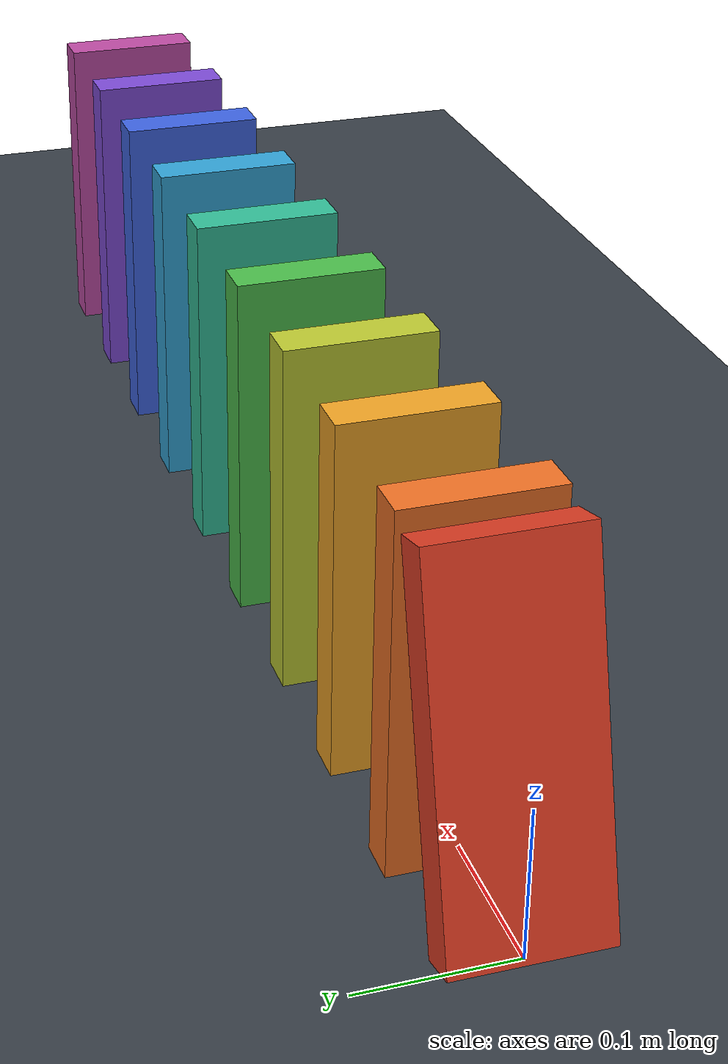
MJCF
<mujoco model="ten_domino_cascade">
  <compiler angle="degree"/>
  <option timestep="0.002" gravity="0 0 -9.81" integrator="implicitfast" iterations="100" tolerance="1e-10"/>
  <size nconmax="200" njmax="1000"/>

  <visual>
    <headlight ambient="0.4 0.4 0.4" diffuse="0.7 0.7 0.7" specular="0.2 0.2 0.2"/>
  </visual>

  <worldbody>
    <light name="overhead" pos="0.45 -0.5 2" dir="0 0 -1"/>
    <camera name="overview" pos="1.35 -1.7 1.15" xyaxes="0.884 0.468 0 -0.231 0.437 0.869"/>

    <geom name="floor" type="plane" pos="0 0 0" size="2 1 0.1" friction="0.8 0.005 0.0001" solref="0.01 1" solimp="0.95 0.99 0.001" rgba="0.22 0.25 0.28 1"/>

    <!-- Each domino is 0.028 m thick, 0.10 m wide, and 0.24 m tall. -->
    <!-- Domino 1 leans 15 degrees toward +x, resting on its lower leading edge. -->
    <body name="domino1" pos="0.031535323 0 0.119535" quat="0.991444861 0 0.130526192 0">
      <freejoint/>
      <geom name="domino1_geom" type="box" size="0.014 0.05 0.12" mass="0.15" friction="0.8 0.005 0.0001" solref="0.01 1" solimp="0.95 0.99 0.001" rgba="0.9 0.25 0.15 1"/>
    </body>

    <body name="domino2" pos="0.10 0 0.12">
      <freejoint/>
      <geom name="domino2_geom" type="box" size="0.014 0.05 0.12" mass="0.15" friction="0.8 0.005 0.0001" solref="0.01 1" solimp="0.95 0.99 0.001" rgba="0.95 0.45 0.15 1"/>
    </body>

    <body name="domino3" pos="0.20 0 0.12">
      <freejoint/>
      <geom name="domino3_geom" type="box" size="0.014 0.05 0.12" mass="0.15" friction="0.8 0.005 0.0001" solref="0.01 1" solimp="0.95 0.99 0.001" rgba="0.95 0.65 0.15 1"/>
    </body>

    <body name="domino4" pos="0.30 0 0.12">
      <freejoint/>
      <geom name="domino4_geom" type="box" size="0.014 0.05 0.12" mass="0.15" friction="0.8 0.005 0.0001" solref="0.01 1" solimp="0.95 0.99 0.001" rgba="0.75 0.8 0.2 1"/>
    </body>

    <body name="domino5" pos="0.40 0 0.12">
      <freejoint/>
      <geom name="domino5_geom" type="box" size="0.014 0.05 0.12" mass="0.15" friction="0.8 0.005 0.0001" solref="0.01 1" solimp="0.95 0.99 0.001" rgba="0.3 0.75 0.3 1"/>
    </body>

    <body name="domino6" pos="0.50 0 0.12">
      <freejoint/>
      <geom name="domino6_geom" type="box" size="0.014 0.05 0.12" mass="0.15" friction="0.8 0.005 0.0001" solref="0.01 1" solimp="0.95 0.99 0.001" rgba="0.2 0.75 0.6 1"/>
    </body>

    <body name="domino7" pos="0.60 0 0.12">
      <freejoint/>
      <geom name="domino7_geom" type="box" size="0.014 0.05 0.12" mass="0.15" friction="0.8 0.005 0.0001" solref="0.01 1" solimp="0.95 0.99 0.001" rgba="0.2 0.65 0.85 1"/>
    </body>

    <body name="domino8" pos="0.70 0 0.12">
      <freejoint/>
      <geom name="domino8_geom" type="box" size="0.014 0.05 0.12" mass="0.15" friction="0.8 0.005 0.0001" solref="0.01 1" solimp="0.95 0.99 0.001" rgba="0.25 0.4 0.9 1"/>
    </body>

    <body name="domino9" pos="0.80 0 0.12">
      <freejoint/>
      <geom name="domino9_geom" type="box" size="0.014 0.05 0.12" mass="0.15" friction="0.8 0.005 0.0001" solref="0.01 1" solimp="0.95 0.99 0.001" rgba="0.5 0.3 0.85 1"/>
    </body>

    <body name="domino10" pos="0.90 0 0.12">
      <freejoint/>
      <geom name="domino10_geom" type="box" size="0.014 0.05 0.12" mass="0.15" friction="0.8 0.005 0.0001" solref="0.01 1" solimp="0.95 0.99 0.001" rgba="0.75 0.3 0.65 1"/>
    </body>
  </worldbody>

  <keyframe>
    <key name="start"/>
  </keyframe>
</mujoco>
